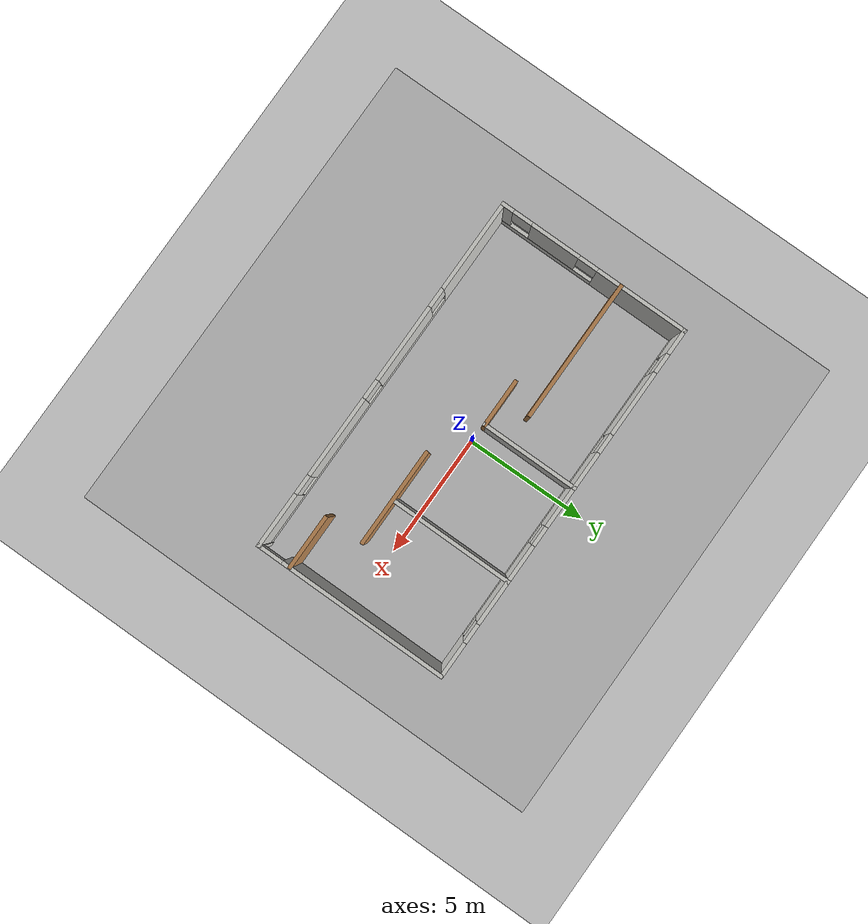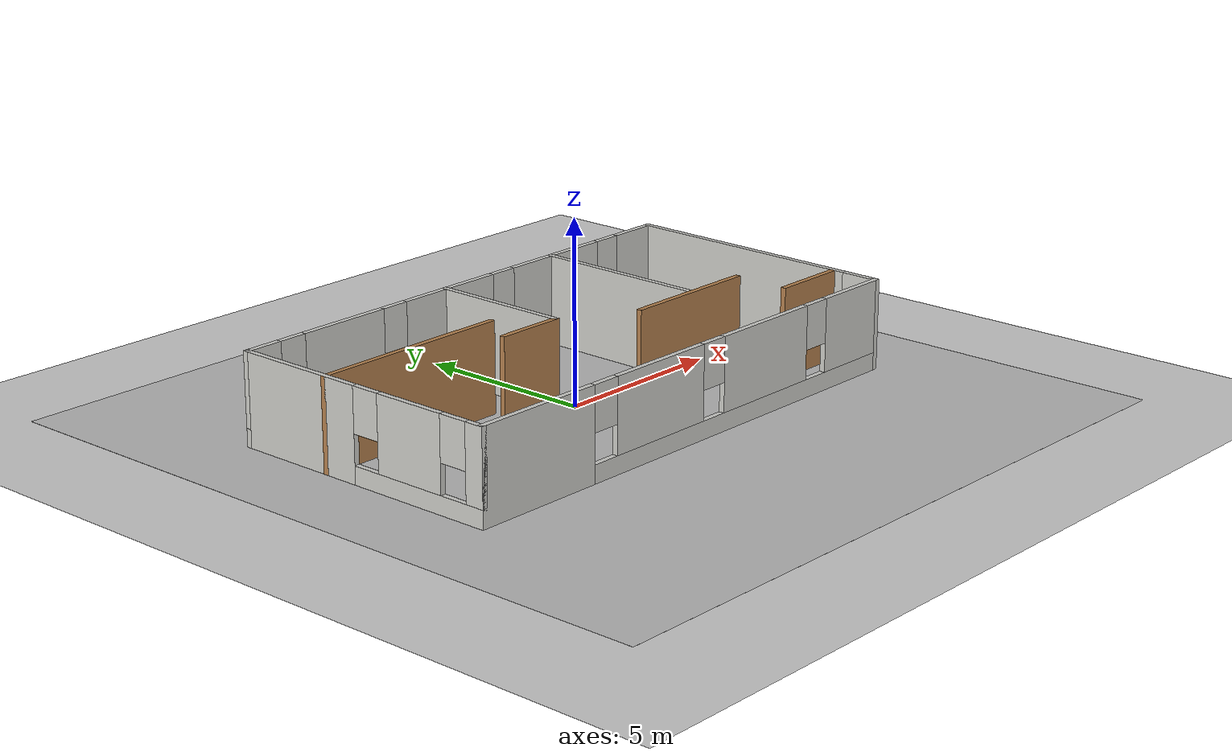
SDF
<sdf version="1.7">
 <world name="default">
  <light name="sun" type="directional">
   <pose>0 0 10 0 -0 0</pose>
   <diffuse>0.8 0.8 0.8 1</diffuse>
   <specular>0.2 0.2 0.2 1</specular>
   <attenuation>
    <range>1000</range>
    <constant>0.9</constant>
    <linear>0.01</linear>
    <quadratic>0.001</quadratic>
   </attenuation>
   <direction>-0.5 0.1 -0.9</direction>
   <spot><inner_angle>0</inner_angle><outer_angle>0</outer_angle><falloff>0</falloff></spot>
  </light>
  <model name="ground_plane">
   <static>1</static>
   <link name="link">
    <collision name="collision">
     <geometry><plane><normal>0 0 1</normal><size>100 100</size></plane></geometry>
     <surface>
      <contact><collide_bitmask>65535</collide_bitmask></contact>
      <friction><ode><mu>100</mu><mu2>50</mu2></ode></friction>
     </surface>
    </collision>
    <visual name="visual">
     <cast_shadows>0</cast_shadows>
     <geometry><plane><normal>0 0 1</normal><size>100 100</size></plane></geometry>
     <material>
      <script><uri>file://media/materials/scripts/gazebo.material</uri><name>Gazebo/Grey</name></script>
     </material>
    </visual>
   </link>
  </model>
  <gravity>0 0 -9.8</gravity>
  <magnetic_field>6e-06 2.3e-05 -4.2e-05</magnetic_field>
  <atmosphere type="adiabatic"/>
  <physics type="ode">
   <max_step_size>0.001</max_step_size>
   <real_time_factor>1</real_time_factor>
   <real_time_update_rate>1000</real_time_update_rate>
  </physics>
  <scene><ambient>0.4 0.4 0.4 1</ambient><background>0.7 0.7 0.7 1</background><shadows>1</shadows></scene>
  <spherical_coordinates>
   <surface_model>EARTH_WGS84</surface_model>
   <latitude_deg>0</latitude_deg>
   <longitude_deg>0</longitude_deg>
   <elevation>0</elevation>
   <heading_deg>0</heading_deg>
  </spherical_coordinates>
  <model name="restaurant">
   <pose>-0.015913 0.00159 0 0 -0 0</pose>
   <link name="Wall_15">
    <collision name="Wall_15_Collision">
     <geometry><box><size>4 0.15 2.5</size></box></geometry>
     <pose>0 0 1.25 0 -0 0</pose>
    </collision>
    <visual name="Wall_15_Visual">
     <pose>0 0 1.25 0 -0 0</pose>
     <geometry><box><size>4 0.15 2.5</size></box></geometry>
     <material>
      <script><uri>file://media/materials/scripts/gazebo.material</uri><name>Gazebo/CeilingTiled</name></script>
      <ambient>1 1 1 1</ambient>
     </material>
     <meta><layer>0</layer></meta>
    </visual>
    <pose>-0.626194 2.00622 0 0 -0 -1.5708</pose>
   </link>
   <link name="Wall_16">
    <collision name="Wall_16_Collision">
     <geometry><box><size>2 0.15 2.5</size></box></geometry>
     <pose>0 0 1.25 0 -0 0</pose>
    </collision>
    <visual name="Wall_16_Visual">
     <pose>0 0 1.25 0 -0 0</pose>
     <geometry><box><size>2 0.15 2.5</size></box></geometry>
     <material>
      <script><uri>file://media/materials/scripts/gazebo.material</uri><name>Gazebo/Wood</name></script>
      <ambient>1 1 1 1</ambient>
     </material>
     <meta><layer>0</layer></meta>
    </visual>
    <pose>-1.55119 0.081215 0 0 -0 3.14159</pose>
   </link>
   <link name="Wall_19">
    <collision name="Wall_19_Collision">
     <geometry><box><size>5 0.15 2.5</size></box></geometry>
     <pose>0 0 1.25 0 -0 0</pose>
    </collision>
    <visual name="Wall_19_Visual">
     <pose>0 0 1.25 0 -0 0</pose>
     <geometry><box><size>5 0.15 2.5</size></box></geometry>
     <material>
      <script><uri>file://media/materials/scripts/gazebo.material</uri><name>Gazebo/CeilingTiled</name></script>
      <ambient>1 1 1 1</ambient>
     </material>
     <meta><layer>0</layer></meta>
    </visual>
    <pose>3.4023 1.49471 0 0 -0 -1.5708</pose>
   </link>
   <link name="Wall_2">
    <pose>0 -3.93121 0 0 -0 0</pose>
    <visual name="Wall_2_Visual_0">
     <pose>-5.60047 0 1.25 0 -0 0</pose>
     <geometry><box><size>3.79905 0.15 2.5</size></box></geometry>
     <material>
      <script><uri>file://media/materials/scripts/gazebo.material</uri><name>Gazebo/CeilingTiled</name></script>
      <ambient>1 1 1 1</ambient>
     </material>
     <meta><layer>0</layer></meta>
    </visual>
    <collision name="Wall_2_Collision_0">
     <geometry><box><size>3.79905 0.15 2.5</size></box></geometry>
     <pose>-5.60047 0 1.25 0 -0 0</pose>
    </collision>
    <visual name="Wall_2_Visual_1">
     <pose>1.89953 0 0.25 0 -0 0</pose>
     <geometry><box><size>11.2009 0.15 0.5</size></box></geometry>
     <material>
      <script><uri>file://media/materials/scripts/gazebo.material</uri><name>Gazebo/CeilingTiled</name></script>
      <ambient>1 1 1 1</ambient>
     </material>
     <meta><layer>0</layer></meta>
    </visual>
    <collision name="Wall_2_Collision_1">
     <geometry><box><size>11.2009 0.15 0.5</size></box></geometry>
     <pose>1.89953 0 0.25 0 -0 0</pose>
    </collision>
    <visual name="Wall_2_Visual_2">
     <pose>-1.30593 0 1.5 0 -0 0</pose>
     <geometry><box><size>3.19003 0.15 2</size></box></geometry>
     <material>
      <script><uri>file://media/materials/scripts/gazebo.material</uri><name>Gazebo/CeilingTiled</name></script>
      <ambient>1 1 1 1</ambient>
     </material>
     <meta><layer>0</layer></meta>
    </visual>
    <collision name="Wall_2_Collision_2">
     <geometry><box><size>3.19003 0.15 2</size></box></geometry>
     <pose>-1.30593 0 1.5 0 -0 0</pose>
    </collision>
    <visual name="Wall_2_Visual_3">
     <pose>2.7506 0 1.5 0 -0 0</pose>
     <geometry><box><size>3.32303 0.15 2</size></box></geometry>
     <material>
      <script><uri>file://media/materials/scripts/gazebo.material</uri><name>Gazebo/CeilingTiled</name></script>
      <ambient>1 1 1 1</ambient>
     </material>
     <meta><layer>0</layer></meta>
    </visual>
    <collision name="Wall_2_Collision_3">
     <geometry><box><size>3.32303 0.15 2</size></box></geometry>
     <pose>2.7506 0 1.5 0 -0 0</pose>
    </collision>
    <visual name="Wall_2_Visual_4">
     <pose>6.35606 0 1.5 0 -0 0</pose>
     <geometry><box><size>2.28789 0.15 2</size></box></geometry>
     <material>
      <script><uri>file://media/materials/scripts/gazebo.material</uri><name>Gazebo/CeilingTiled</name></script>
      <ambient>1 1 1 1</ambient>
     </material>
     <meta><layer>0</layer></meta>
    </visual>
    <collision name="Wall_2_Collision_4">
     <geometry><box><size>2.28789 0.15 2</size></box></geometry>
     <pose>6.35606 0 1.5 0 -0 0</pose>
    </collision>
    <visual name="Wall_2_Visual_5">
     <pose>-3.30095 0 1.9 0 -0 0</pose>
     <geometry><box><size>0.8 0.15 1.2</size></box></geometry>
     <material>
      <script><uri>file://media/materials/scripts/gazebo.material</uri><name>Gazebo/CeilingTiled</name></script>
      <ambient>1 1 1 1</ambient>
     </material>
     <meta><layer>0</layer></meta>
    </visual>
    <collision name="Wall_2_Collision_5">
     <geometry><box><size>0.8 0.15 1.2</size></box></geometry>
     <pose>-3.30095 0 1.9 0 -0 0</pose>
    </collision>
    <visual name="Wall_2_Visual_6">
     <pose>0.689084 0 1.9 0 -0 0</pose>
     <geometry><box><size>0.8 0.15 1.2</size></box></geometry>
     <material>
      <script><uri>file://media/materials/scripts/gazebo.material</uri><name>Gazebo/CeilingTiled</name></script>
      <ambient>1 1 1 1</ambient>
     </material>
     <meta><layer>0</layer></meta>
    </visual>
    <collision name="Wall_2_Collision_6">
     <geometry><box><size>0.8 0.15 1.2</size></box></geometry>
     <pose>0.689084 0 1.9 0 -0 0</pose>
    </collision>
    <visual name="Wall_2_Visual_7">
     <pose>4.81211 0 1.9 0 -0 0</pose>
     <geometry><box><size>0.8 0.15 1.2</size></box></geometry>
     <material>
      <script><uri>file://media/materials/scripts/gazebo.material</uri><name>Gazebo/CeilingTiled</name></script>
      <ambient>1 1 1 1</ambient>
     </material>
     <meta><layer>0</layer></meta>
    </visual>
    <collision name="Wall_2_Collision_7">
     <geometry><box><size>0.8 0.15 1.2</size></box></geometry>
     <pose>4.81211 0 1.9 0 -0 0</pose>
    </collision>
   </link>
   <link name="Wall_21">
    <collision name="Wall_21_Collision">
     <geometry><box><size>4 0.15 2.5</size></box></geometry>
     <pose>0 0 1.25 0 -0 0</pose>
    </collision>
    <visual name="Wall_21_Visual">
     <pose>0 0 1.25 0 -0 0</pose>
     <geometry><box><size>4 0.15 2.5</size></box></geometry>
     <material>
      <script><uri>file://media/materials/scripts/gazebo.material</uri><name>Gazebo/Wood</name></script>
      <ambient>1 1 1 1</ambient>
     </material>
     <meta><layer>0</layer></meta>
    </visual>
    <pose>3.30569 -1.02793 0 0 -0 0</pose>
   </link>
   <link name="Wall_23">
    <collision name="Wall_23_Collision">
     <geometry><box><size>2.25 0.15 2.5</size></box></geometry>
     <pose>0 0 1.25 0 -0 0</pose>
    </collision>
    <visual name="Wall_23_Visual">
     <pose>0 0 1.25 0 -0 0</pose>
     <geometry><box><size>2.25 0.15 2.5</size></box></geometry>
     <material>
      <script><uri>file://media/materials/scripts/gazebo.material</uri><name>Gazebo/Wood</name></script>
      <ambient>1 1 1 1</ambient>
     </material>
     <meta><layer>0</layer></meta>
    </visual>
    <pose>6.34233 -2.59734 0 0 -0 3.14159</pose>
   </link>
   <link name="Wall_3">
    <pose>7.425 -0.006215 0 0 -0 1.5708</pose>
    <visual name="Wall_3_Visual_0">
     <pose>-3.9082 0 1.25 0 -0 0</pose>
     <geometry><box><size>0.183604 0.15 2.5</size></box></geometry>
     <material>
      <script><uri>file://media/materials/scripts/gazebo.material</uri><name>Gazebo/CeilingTiled</name></script>
      <ambient>1 1 1 1</ambient>
     </material>
     <meta><layer>0</layer></meta>
    </visual>
    <collision name="Wall_3_Collision_0">
     <geometry><box><size>0.183604 0.15 2.5</size></box></geometry>
     <pose>-3.9082 0 1.25 0 -0 0</pose>
    </collision>
    <visual name="Wall_3_Visual_1">
     <pose>0.541802 0 1.25 0 -0 0</pose>
     <geometry><box><size>6.9164 0.15 2.5</size></box></geometry>
     <material>
      <script><uri>file://media/materials/scripts/gazebo.material</uri><name>Gazebo/CeilingTiled</name></script>
      <ambient>1 1 1 1</ambient>
     </material>
     <meta><layer>0</layer></meta>
    </visual>
    <collision name="Wall_3_Collision_1">
     <geometry><box><size>6.9164 0.15 2.5</size></box></geometry>
     <pose>0.541802 0 1.25 0 -0 0</pose>
    </collision>
    <visual name="Wall_3_Visual_2">
     <pose>-3.3664 0 2.25 0 -0 0</pose>
     <geometry><box><size>0.9 0.15 0.5</size></box></geometry>
     <material>
      <script><uri>file://media/materials/scripts/gazebo.material</uri><name>Gazebo/CeilingTiled</name></script>
      <ambient>1 1 1 1</ambient>
     </material>
     <meta><layer>0</layer></meta>
    </visual>
    <collision name="Wall_3_Collision_2">
     <geometry><box><size>0.9 0.15 0.5</size></box></geometry>
     <pose>-3.3664 0 2.25 0 -0 0</pose>
    </collision>
   </link>
   <link name="Wall_4">
    <pose>0 3.91879 0 0 -0 3.14159</pose>
    <visual name="Wall_4_Visual_0">
     <pose>-6.75506 0 1.25 0 -0 0</pose>
     <geometry><box><size>1.48988 0.15 2.5</size></box></geometry>
     <material>
      <script><uri>file://media/materials/scripts/gazebo.material</uri><name>Gazebo/CeilingTiled</name></script>
      <ambient>1 1 1 1</ambient>
     </material>
     <meta><layer>0</layer></meta>
    </visual>
    <collision name="Wall_4_Collision_0">
     <geometry><box><size>1.48988 0.15 2.5</size></box></geometry>
     <pose>-6.75506 0 1.25 0 -0 0</pose>
    </collision>
    <visual name="Wall_4_Visual_1">
     <pose>0.74494 0 0.25 0 -0 0</pose>
     <geometry><box><size>13.5101 0.15 0.5</size></box></geometry>
     <material>
      <script><uri>file://media/materials/scripts/gazebo.material</uri><name>Gazebo/CeilingTiled</name></script>
      <ambient>1 1 1 1</ambient>
     </material>
     <meta><layer>0</layer></meta>
    </visual>
    <collision name="Wall_4_Collision_1">
     <geometry><box><size>13.5101 0.15 0.5</size></box></geometry>
     <pose>0.74494 0 0.25 0 -0 0</pose>
    </collision>
    <visual name="Wall_4_Visual_2">
     <pose>-3.53531 0 1.5 0 -0 0</pose>
     <geometry><box><size>3.34963 0.15 2</size></box></geometry>
     <material>
      <script><uri>file://media/materials/scripts/gazebo.material</uri><name>Gazebo/CeilingTiled</name></script>
      <ambient>1 1 1 1</ambient>
     </material>
     <meta><layer>0</layer></meta>
    </visual>
    <collision name="Wall_4_Collision_2">
     <geometry><box><size>3.34963 0.15 2</size></box></geometry>
     <pose>-3.53531 0 1.5 0 -0 0</pose>
    </collision>
    <visual name="Wall_4_Visual_3">
     <pose>0.534525 0 1.5 0 -0 0</pose>
     <geometry><box><size>3.19003 0.15 2</size></box></geometry>
     <material>
      <script><uri>file://media/materials/scripts/gazebo.material</uri><name>Gazebo/CeilingTiled</name></script>
      <ambient>1 1 1 1</ambient>
     </material>
     <meta><layer>0</layer></meta>
    </visual>
    <collision name="Wall_4_Collision_3">
     <geometry><box><size>3.19003 0.15 2</size></box></geometry>
     <pose>0.534525 0 1.5 0 -0 0</pose>
    </collision>
    <visual name="Wall_4_Visual_4">
     <pose>4.27185 0 1.5 0 -0 0</pose>
     <geometry><box><size>2.68463 0.15 2</size></box></geometry>
     <material>
      <script><uri>file://media/materials/scripts/gazebo.material</uri><name>Gazebo/CeilingTiled</name></script>
      <ambient>1 1 1 1</ambient>
     </material>
     <meta><layer>0</layer></meta>
    </visual>
    <collision name="Wall_4_Collision_4">
     <geometry><box><size>2.68463 0.15 2</size></box></geometry>
     <pose>4.27185 0 1.5 0 -0 0</pose>
    </collision>
    <visual name="Wall_4_Visual_5">
     <pose>6.95708 0 1.5 0 -0 0</pose>
     <geometry><box><size>1.08583 0.15 2</size></box></geometry>
     <material>
      <script><uri>file://media/materials/scripts/gazebo.material</uri><name>Gazebo/CeilingTiled</name></script>
      <ambient>1 1 1 1</ambient>
     </material>
     <meta><layer>0</layer></meta>
    </visual>
    <collision name="Wall_4_Collision_5">
     <geometry><box><size>1.08583 0.15 2</size></box></geometry>
     <pose>6.95708 0 1.5 0 -0 0</pose>
    </collision>
    <visual name="Wall_4_Visual_6">
     <pose>-5.61012 0 1.9 0 -0 0</pose>
     <geometry><box><size>0.8 0.15 1.2</size></box></geometry>
     <material>
      <script><uri>file://media/materials/scripts/gazebo.material</uri><name>Gazebo/CeilingTiled</name></script>
      <ambient>1 1 1 1</ambient>
     </material>
     <meta><layer>0</layer></meta>
    </visual>
    <collision name="Wall_4_Collision_6">
     <geometry><box><size>0.8 0.15 1.2</size></box></geometry>
     <pose>-5.61012 0 1.9 0 -0 0</pose>
    </collision>
    <visual name="Wall_4_Visual_7">
     <pose>-1.46049 0 1.9 0 -0 0</pose>
     <geometry><box><size>0.8 0.15 1.2</size></box></geometry>
     <material>
      <script><uri>file://media/materials/scripts/gazebo.material</uri><name>Gazebo/CeilingTiled</name></script>
      <ambient>1 1 1 1</ambient>
     </material>
     <meta><layer>0</layer></meta>
    </visual>
    <collision name="Wall_4_Collision_7">
     <geometry><box><size>0.8 0.15 1.2</size></box></geometry>
     <pose>-1.46049 0 1.9 0 -0 0</pose>
    </collision>
    <visual name="Wall_4_Visual_8">
     <pose>2.52954 0 1.9 0 -0 0</pose>
     <geometry><box><size>0.8 0.15 1.2</size></box></geometry>
     <material>
      <script><uri>file://media/materials/scripts/gazebo.material</uri><name>Gazebo/CeilingTiled</name></script>
      <ambient>1 1 1 1</ambient>
     </material>
     <meta><layer>0</layer></meta>
    </visual>
    <collision name="Wall_4_Collision_8">
     <geometry><box><size>0.8 0.15 1.2</size></box></geometry>
     <pose>2.52954 0 1.9 0 -0 0</pose>
    </collision>
    <visual name="Wall_4_Visual_9">
     <pose>6.01417 0 1.9 0 -0 0</pose>
     <geometry><box><size>0.8 0.15 1.2</size></box></geometry>
     <material>
      <script><uri>file://media/materials/scripts/gazebo.material</uri><name>Gazebo/CeilingTiled</name></script>
      <ambient>1 1 1 1</ambient>
     </material>
     <meta><layer>0</layer></meta>
    </visual>
    <collision name="Wall_4_Collision_9">
     <geometry><box><size>0.8 0.15 1.2</size></box></geometry>
     <pose>6.01417 0 1.9 0 -0 0</pose>
    </collision>
   </link>
   <link name="Wall_5">
    <pose>-7.425 -0.006215 0 0 -0 -1.5708</pose>
    <visual name="Wall_5_Visual_0">
     <pose>-2.08815 0 1.25 0 -0 0</pose>
     <geometry><box><size>3.82371 0.15 2.5</size></box></geometry>
     <material>
      <script><uri>file://media/materials/scripts/gazebo.material</uri><name>Gazebo/CeilingTiled</name></script>
      <ambient>1 1 1 1</ambient>
     </material>
     <meta><layer>0</layer></meta>
    </visual>
    <collision name="Wall_5_Collision_0">
     <geometry><box><size>3.82371 0.15 2.5</size></box></geometry>
     <pose>-2.08815 0 1.25 0 -0 0</pose>
    </collision>
    <visual name="Wall_5_Visual_1">
     <pose>1.91185 0 0.25 0 -0 0</pose>
     <geometry><box><size>4.17629 0.15 0.5</size></box></geometry>
     <material>
      <script><uri>file://media/materials/scripts/gazebo.material</uri><name>Gazebo/CeilingTiled</name></script>
      <ambient>1 1 1 1</ambient>
     </material>
     <meta><layer>0</layer></meta>
    </visual>
    <collision name="Wall_5_Collision_1">
     <geometry><box><size>4.17629 0.15 0.5</size></box></geometry>
     <pose>1.91185 0 0.25 0 -0 0</pose>
    </collision>
    <visual name="Wall_5_Visual_2">
     <pose>1.64682 0 1.5 0 -0 0</pose>
     <geometry><box><size>2.04622 0.15 2</size></box></geometry>
     <material>
      <script><uri>file://media/materials/scripts/gazebo.material</uri><name>Gazebo/CeilingTiled</name></script>
      <ambient>1 1 1 1</ambient>
     </material>
     <meta><layer>0</layer></meta>
    </visual>
    <collision name="Wall_5_Collision_2">
     <geometry><box><size>2.04622 0.15 2</size></box></geometry>
     <pose>1.64682 0 1.5 0 -0 0</pose>
    </collision>
    <visual name="Wall_5_Visual_3">
     <pose>3.73496 0 1.5 0 -0 0</pose>
     <geometry><box><size>0.530073 0.15 2</size></box></geometry>
     <material>
      <script><uri>file://media/materials/scripts/gazebo.material</uri><name>Gazebo/CeilingTiled</name></script>
      <ambient>1 1 1 1</ambient>
     </material>
     <meta><layer>0</layer></meta>
    </visual>
    <collision name="Wall_5_Collision_3">
     <geometry><box><size>0.530073 0.15 2</size></box></geometry>
     <pose>3.73496 0 1.5 0 -0 0</pose>
    </collision>
    <visual name="Wall_5_Visual_4">
     <pose>0.223706 0 1.9 0 -0 0</pose>
     <geometry><box><size>0.8 0.15 1.2</size></box></geometry>
     <material>
      <script><uri>file://media/materials/scripts/gazebo.material</uri><name>Gazebo/CeilingTiled</name></script>
      <ambient>1 1 1 1</ambient>
     </material>
     <meta><layer>0</layer></meta>
    </visual>
    <collision name="Wall_5_Collision_4">
     <geometry><box><size>0.8 0.15 1.2</size></box></geometry>
     <pose>0.223706 0 1.9 0 -0 0</pose>
    </collision>
    <visual name="Wall_5_Visual_5">
     <pose>3.06993 0 1.9 0 -0 0</pose>
     <geometry><box><size>0.8 0.15 1.2</size></box></geometry>
     <material>
      <script><uri>file://media/materials/scripts/gazebo.material</uri><name>Gazebo/CeilingTiled</name></script>
      <ambient>1 1 1 1</ambient>
     </material>
     <meta><layer>0</layer></meta>
    </visual>
    <collision name="Wall_5_Collision_5">
     <geometry><box><size>0.8 0.15 1.2</size></box></geometry>
     <pose>3.06993 0 1.9 0 -0 0</pose>
    </collision>
   </link>
   <link name="Wall_8">
    <collision name="Wall_8_Collision">
     <geometry><box><size>5.75 0.15 2.5</size></box></geometry>
     <pose>0 0 1.25 0 -0 0</pose>
    </collision>
    <visual name="Wall_8_Visual">
     <pose>0 0 1.25 0 -0 0</pose>
     <geometry><box><size>5.75 0.15 2.5</size></box></geometry>
     <material>
      <script><uri>file://media/materials/scripts/gazebo.material</uri><name>Gazebo/Wood</name></script>
      <ambient>1 1 1 1</ambient>
     </material>
     <meta><layer>0</layer></meta>
    </visual>
    <pose>-4.625 1.17602 0 0 -0 0</pose>
   </link>
   <static>1</static>
  </model>
  <model name="Floor_room">
   <link name="main">
    <pose>0 0 0.01 0 -0 0</pose>
    <collision name="main_Collision"><geometry><box><size>20 20 0.001</size></box></geometry></collision>
    <visual name="main_Visual">
     <geometry><box><size>20 20 0.001</size></box></geometry>
     <material>
      <script>
       <uri>model://Floor_room/materials/scripts</uri>
       <uri>model://Floor_room/materials/textures</uri>
       <name>floor_room</name>
      </script>
     </material>
    </visual>
   </link>
   <static>1</static>
   <pose>0.067551 -0.578834 -0.000135 0 -0 0</pose>
  </model>
 </world>
</sdf>
